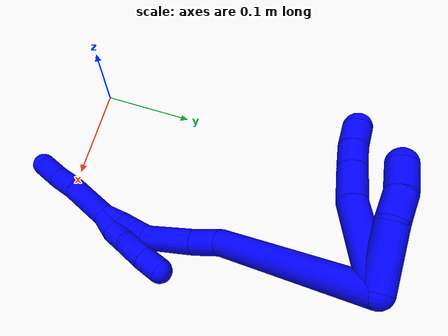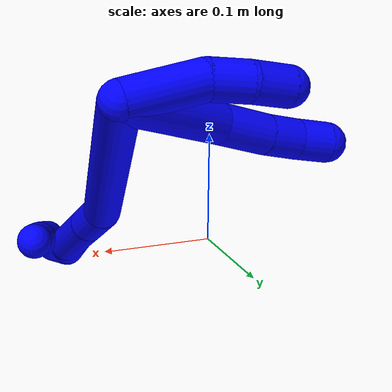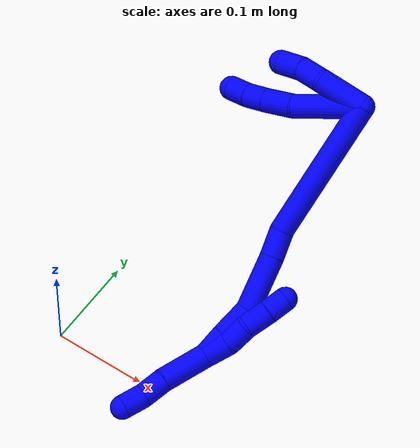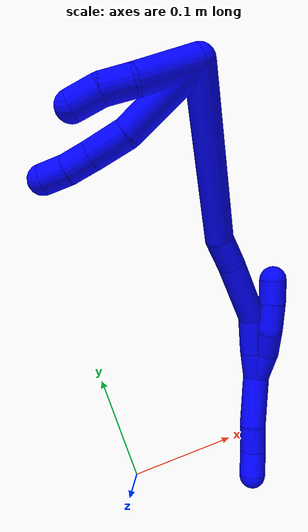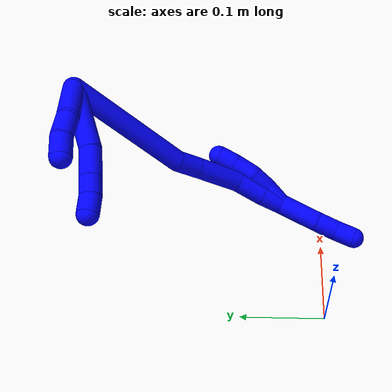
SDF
<sdf version="1.7">
 <world name="default">
  <model name="photoneo_s_sensor">
   <static>1</static>
   <pose>0 0 2 1.57079 1.57079 3.14159</pose>
   <link name="link">
    <inertial><mass>0.1</mass></inertial>
    <sensor name="sensor" type="depth">
     <update_rate>30</update_rate>
     <camera>
      <horizontal_fov>1.22</horizontal_fov>
      <image><width>1920</width><height>1200</height><format>B8G8R8</format></image>
      <clip><near>0.1</near><far>4</far></clip>
      <depth_camera><output>points</output></depth_camera>
     </camera>
     <plugin name="camera_plugin" filename="libgazebo_ros_depth_camera.so">
      <baseline>0.2</baseline>
      <alwaysOn>1</alwaysOn>
      <updateRate>0.0</updateRate>
      <cameraName>camera_ir</cameraName>
      <imageTopicName>/camera/color/image_raw</imageTopicName>
      <cameraInfoTopicName>/camera/color/camera_info</cameraInfoTopicName>
      <depthImageTopicName>/camera/depth/image_raw</depthImageTopicName>
      <depthImageCameraInfoTopicName>/camera/depth/camera_info</depthImageCameraInfoTopicName>
      <pointCloudTopicName>/camera/depth/points</pointCloudTopicName>
      <frameName>fr_optical</frameName>
      <pointCloudCutoff>0.1</pointCloudCutoff>
      <pointCloudCutoffMax>2.0</pointCloudCutoffMax>
      <distortionK1>0</distortionK1>
      <distortionK2>0</distortionK2>
      <distortionK3>0</distortionK3>
      <distortionT1>0</distortionT1>
      <distortionT2>0</distortionT2>
      <CxPrime>0</CxPrime>
      <Cx>0</Cx>
      <Cy>0</Cy>
      <focalLength>0</focalLength>
      <hackBaseline>0</hackBaseline>
     </plugin>
    </sensor>
   </link>
  </model>
  <model name="bin">
   <static>1</static>
   <link name="bottom">
    <collision name="collision-bottom">
     <pose>0 0 -0.01 0 -0 0</pose>
     <geometry><box><size>0.8 0.6 0.02</size></box></geometry>
     <surface>
      <friction><ode><mu>100</mu><mu2>100</mu2></ode></friction>
      <contact><collide_bitmask>65535</collide_bitmask></contact>
     </surface>
    </collision>
   </link>
   <link name="west_wall">
    <collision name="collision-west_wall">
     <pose>-0.41 0 0.1 0 -0 0</pose>
     <geometry><box><size>0.02 0.6 0.2</size></box></geometry>
     <surface>
      <friction><ode><mu>100</mu><mu2>100</mu2></ode></friction>
      <contact><collide_bitmask>65535</collide_bitmask></contact>
     </surface>
    </collision>
   </link>
   <link name="east_wall">
    <collision name="collision-east_wall">
     <pose>0.41 0 0.1 0 -0 0</pose>
     <geometry><box><size>0.02 0.6 0.2</size></box></geometry>
     <surface>
      <friction><ode><mu>100</mu><mu2>100</mu2></ode></friction>
      <contact><collide_bitmask>65535</collide_bitmask></contact>
     </surface>
    </collision>
   </link>
   <link name="south_wall">
    <collision name="collision-south_wall">
     <pose>0 -0.31 0.1 0 -0 0</pose>
     <geometry><box><size>0.8 0.02 0.2</size></box></geometry>
     <surface>
      <friction><ode><mu>100</mu><mu2>100</mu2></ode></friction>
      <contact><collide_bitmask>65535</collide_bitmask></contact>
     </surface>
    </collision>
   </link>
   <link name="north_wall">
    <collision name="collision-north_wall">
     <pose>0 0.31 0.1 0 -0 0</pose>
     <geometry><box><size>0.8 0.02 0.2</size></box></geometry>
     <surface>
      <friction><ode><mu>100</mu><mu2>100</mu2></ode></friction>
      <contact><collide_bitmask>65535</collide_bitmask></contact>
     </surface>
    </collision>
   </link>
  </model>
  <model name="1">
   <static>0</static>
   <link name="1">
    <collision name="collision-cylinder-e_1_2_8">
     <pose>-0.026594 0.011025 -0.02338 -2.70097 -0.799602 2.1669</pose>
     <geometry><cylinder><radius>0.0125</radius><length>0.074173</length></cylinder></geometry>
     <surface>
      <friction><ode><mu>1.16</mu><mu2>1.16</mu2><slip1>0</slip1><slip2>0</slip2></ode></friction>
      <contact><ode><kp>1e+06</kp><kd>1</kd><max_vel>0</max_vel><min_depth>0.001</min_depth></ode></contact>
     </surface>
    </collision>
    <visual name="visual-cylinder-e_1_2_8">
     <pose>-0.026594 0.011025 -0.02338 -2.70097 -0.799602 2.1669</pose>
     <geometry><cylinder><radius>0.0125</radius><length>0.074173</length></cylinder></geometry>
     <material><ambient>0 0 1 1</ambient></material>
    </visual>
    <collision name="collision-cylinder-e_2_8_9">
     <pose>-0.065282 0.029867 -0.054619 -2.35887 -0.828939 1.63482</pose>
     <geometry><cylinder><radius>0.0125</radius><length>0.032811</length></cylinder></geometry>
     <surface>
      <friction><ode><mu>1.16</mu><mu2>1.16</mu2><slip1>0</slip1><slip2>0</slip2></ode></friction>
      <contact><ode><kp>1e+06</kp><kd>1</kd><max_vel>0</max_vel><min_depth>0.001</min_depth></ode></contact>
     </surface>
    </collision>
    <visual name="visual-cylinder-e_2_8_9">
     <pose>-0.065282 0.029867 -0.054619 -2.35887 -0.828939 1.63482</pose>
     <geometry><cylinder><radius>0.0125</radius><length>0.032811</length></cylinder></geometry>
     <material><ambient>0 0 1 1</ambient></material>
    </visual>
    <collision name="collision-cylinder-e_3_9_10">
     <pose>-0.086001 0.042603 -0.067283 -2.34445 -0.897646 1.70463</pose>
     <geometry><cylinder><radius>0.0125</radius><length>0.022062</length></cylinder></geometry>
     <surface>
      <friction><ode><mu>1.16</mu><mu2>1.16</mu2><slip1>0</slip1><slip2>0</slip2></ode></friction>
      <contact><ode><kp>1e+06</kp><kd>1</kd><max_vel>0</max_vel><min_depth>0.001</min_depth></ode></contact>
     </surface>
    </collision>
    <visual name="visual-cylinder-e_3_9_10">
     <pose>-0.086001 0.042603 -0.067283 -2.34445 -0.897646 1.70463</pose>
     <geometry><cylinder><radius>0.0125</radius><length>0.022062</length></cylinder></geometry>
     <material><ambient>0 0 1 1</ambient></material>
    </visual>
    <collision name="collision-cylinder-e_4_10_6">
     <pose>-0.103034 0.052831 -0.07539 -2.12717 -0.931534 1.47062</pose>
     <geometry><cylinder><radius>0.0125</radius><length>0.020955</length></cylinder></geometry>
     <surface>
      <friction><ode><mu>1.16</mu><mu2>1.16</mu2><slip1>0</slip1><slip2>0</slip2></ode></friction>
      <contact><ode><kp>1e+06</kp><kd>1</kd><max_vel>0</max_vel><min_depth>0.001</min_depth></ode></contact>
     </surface>
    </collision>
    <visual name="visual-cylinder-e_4_10_6">
     <pose>-0.103034 0.052831 -0.07539 -2.12717 -0.931534 1.47062</pose>
     <geometry><cylinder><radius>0.0125</radius><length>0.020955</length></cylinder></geometry>
     <material><ambient>0 0 1 1</ambient></material>
    </visual>
    <collision name="collision-cylinder-e_1_2_11">
     <pose>-0.024099 0.006442 -0.003288 -2.0427 -1.27925 1.76428</pose>
     <geometry><cylinder><radius>0.0125</radius><length>0.050323</length></cylinder></geometry>
     <surface>
      <friction><ode><mu>1.16</mu><mu2>1.16</mu2><slip1>0</slip1><slip2>0</slip2></ode></friction>
      <contact><ode><kp>1e+06</kp><kd>1</kd><max_vel>0</max_vel><min_depth>0.001</min_depth></ode></contact>
     </surface>
    </collision>
    <visual name="visual-cylinder-e_1_2_11">
     <pose>-0.024099 0.006442 -0.003288 -2.0427 -1.27925 1.76428</pose>
     <geometry><cylinder><radius>0.0125</radius><length>0.050323</length></cylinder></geometry>
     <material><ambient>0 0 1 1</ambient></material>
    </visual>
    <collision name="collision-cylinder-e_2_11_12">
     <pose>-0.05859 0.019459 -0.009007 -1.92495 -0.97722 1.30397</pose>
     <geometry><cylinder><radius>0.0125</radius><length>0.02507</length></cylinder></geometry>
     <surface>
      <friction><ode><mu>1.16</mu><mu2>1.16</mu2><slip1>0</slip1><slip2>0</slip2></ode></friction>
      <contact><ode><kp>1e+06</kp><kd>1</kd><max_vel>0</max_vel><min_depth>0.001</min_depth></ode></contact>
     </surface>
    </collision>
    <visual name="visual-cylinder-e_2_11_12">
     <pose>-0.05859 0.019459 -0.009007 -1.92495 -0.97722 1.30397</pose>
     <geometry><cylinder><radius>0.0125</radius><length>0.02507</length></cylinder></geometry>
     <material><ambient>0 0 1 1</ambient></material>
    </visual>
    <collision name="collision-cylinder-e_3_12_5">
     <pose>-0.078939 0.031364 -0.016318 -2.31223 -0.943094 1.71727</pose>
     <geometry><cylinder><radius>0.0125</radius><length>0.024608</length></cylinder></geometry>
     <surface>
      <friction><ode><mu>1.16</mu><mu2>1.16</mu2><slip1>0</slip1><slip2>0</slip2></ode></friction>
      <contact><ode><kp>1e+06</kp><kd>1</kd><max_vel>0</max_vel><min_depth>0.001</min_depth></ode></contact>
     </surface>
    </collision>
    <visual name="visual-cylinder-e_3_12_5">
     <pose>-0.078939 0.031364 -0.016318 -2.31223 -0.943094 1.71727</pose>
     <geometry><cylinder><radius>0.0125</radius><length>0.024608</length></cylinder></geometry>
     <material><ambient>0 0 1 1</ambient></material>
    </visual>
    <collision name="collision-cylinder-e_1_2_13">
     <pose>0.00498 -0.006311 -0.074743 3.05736 0.06629 1.33332</pose>
     <geometry><cylinder><radius>0.0125</radius><length>0.150348</length></cylinder></geometry>
     <surface>
      <friction><ode><mu>1.16</mu><mu2>1.16</mu2><slip1>0</slip1><slip2>0</slip2></ode></friction>
      <contact><ode><kp>1e+06</kp><kd>1</kd><max_vel>0</max_vel><min_depth>0.001</min_depth></ode></contact>
     </surface>
    </collision>
    <visual name="visual-cylinder-e_1_2_13">
     <pose>0.00498 -0.006311 -0.074743 3.05736 0.06629 1.33332</pose>
     <geometry><cylinder><radius>0.0125</radius><length>0.150348</length></cylinder></geometry>
     <material><ambient>0 0 1 1</ambient></material>
    </visual>
    <collision name="collision-cylinder-e_2_13_14">
     <pose>0.01373 -0.016651 -0.162655 2.8446 0.267284 1.4642</pose>
     <geometry><cylinder><radius>0.0125</radius><length>0.028557</length></cylinder></geometry>
     <surface>
      <friction><ode><mu>1.16</mu><mu2>1.16</mu2><slip1>0</slip1><slip2>0</slip2></ode></friction>
      <contact><ode><kp>1e+06</kp><kd>1</kd><max_vel>0</max_vel><min_depth>0.001</min_depth></ode></contact>
     </surface>
    </collision>
    <visual name="visual-cylinder-e_2_13_14">
     <pose>0.01373 -0.016651 -0.162655 2.8446 0.267284 1.4642</pose>
     <geometry><cylinder><radius>0.0125</radius><length>0.028557</length></cylinder></geometry>
     <material><ambient>0 0 1 1</ambient></material>
    </visual>
    <collision name="collision-cylinder-e_3_14_15">
     <pose>0.023221 -0.029502 -0.203232 2.83024 0.196079 1.1196</pose>
     <geometry><cylinder><radius>0.0125</radius><length>0.05871</length></cylinder></geometry>
     <surface>
      <friction><ode><mu>1.16</mu><mu2>1.16</mu2><slip1>0</slip1><slip2>0</slip2></ode></friction>
      <contact><ode><kp>1e+06</kp><kd>1</kd><max_vel>0</max_vel><min_depth>0.001</min_depth></ode></contact>
     </surface>
    </collision>
    <visual name="visual-cylinder-e_3_14_15">
     <pose>0.023221 -0.029502 -0.203232 2.83024 0.196079 1.1196</pose>
     <geometry><cylinder><radius>0.0125</radius><length>0.05871</length></cylinder></geometry>
     <material><ambient>0 0 1 1</ambient></material>
    </visual>
    <collision name="collision-cylinder-e_4_15_16">
     <pose>0.026503 -0.042917 -0.247404 2.87413 -0.139319 -0.956853</pose>
     <geometry><cylinder><radius>0.0125</radius><length>0.035104</length></cylinder></geometry>
     <surface>
      <friction><ode><mu>1.16</mu><mu2>1.16</mu2><slip1>0</slip1><slip2>0</slip2></ode></friction>
      <contact><ode><kp>1e+06</kp><kd>1</kd><max_vel>0</max_vel><min_depth>0.001</min_depth></ode></contact>
     </surface>
    </collision>
    <visual name="visual-cylinder-e_4_15_16">
     <pose>0.026503 -0.042917 -0.247404 2.87413 -0.139319 -0.956853</pose>
     <geometry><cylinder><radius>0.0125</radius><length>0.035104</length></cylinder></geometry>
     <material><ambient>0 0 1 1</ambient></material>
    </visual>
    <collision name="collision-cylinder-e_5_16_1">
     <pose>0.02262 -0.051956 -0.276982 2.80767 -0.106131 -0.610627</pose>
     <geometry><cylinder><radius>0.0125</radius><length>0.027281</length></cylinder></geometry>
     <surface>
      <friction><ode><mu>1.16</mu><mu2>1.16</mu2><slip1>0</slip1><slip2>0</slip2></ode></friction>
      <contact><ode><kp>1e+06</kp><kd>1</kd><max_vel>0</max_vel><min_depth>0.001</min_depth></ode></contact>
     </surface>
    </collision>
    <visual name="visual-cylinder-e_5_16_1">
     <pose>0.02262 -0.051956 -0.276982 2.80767 -0.106131 -0.610627</pose>
     <geometry><cylinder><radius>0.0125</radius><length>0.027281</length></cylinder></geometry>
     <material><ambient>0 0 1 1</ambient></material>
    </visual>
    <collision name="collision-cylinder-e_1_1_17">
     <pose>0.026589 -0.056471 -0.277171 0.005488 0.40506 0.001127</pose>
     <geometry><cylinder><radius>0.0125</radius><length>0.027474</length></cylinder></geometry>
     <surface>
      <friction><ode><mu>1.16</mu><mu2>1.16</mu2><slip1>0</slip1><slip2>0</slip2></ode></friction>
      <contact><ode><kp>1e+06</kp><kd>1</kd><max_vel>0</max_vel><min_depth>0.001</min_depth></ode></contact>
     </surface>
    </collision>
    <visual name="visual-cylinder-e_1_1_17">
     <pose>0.026589 -0.056471 -0.277171 0.005488 0.40506 0.001127</pose>
     <geometry><cylinder><radius>0.0125</radius><length>0.027474</length></cylinder></geometry>
     <material><ambient>0 0 1 1</ambient></material>
    </visual>
    <collision name="collision-cylinder-e_2_17_18">
     <pose>0.033947 -0.055952 -0.252501 -0.048744 0.159941 -0.003907</pose>
     <geometry><cylinder><radius>0.0125</radius><length>0.02443</length></cylinder></geometry>
     <surface>
      <friction><ode><mu>1.16</mu><mu2>1.16</mu2><slip1>0</slip1><slip2>0</slip2></ode></friction>
      <contact><ode><kp>1e+06</kp><kd>1</kd><max_vel>0</max_vel><min_depth>0.001</min_depth></ode></contact>
     </surface>
    </collision>
    <visual name="visual-cylinder-e_2_17_18">
     <pose>0.033947 -0.055952 -0.252501 -0.048744 0.159941 -0.003907</pose>
     <geometry><cylinder><radius>0.0125</radius><length>0.02443</length></cylinder></geometry>
     <material><ambient>0 0 1 1</ambient></material>
    </visual>
    <collision name="collision-cylinder-e_3_18_19">
     <pose>0.04044 -0.05183 -0.228742 -0.293061 0.355845 -0.053067</pose>
     <geometry><cylinder><radius>0.0125</radius><length>0.026108</length></cylinder></geometry>
     <surface>
      <friction><ode><mu>1.16</mu><mu2>1.16</mu2><slip1>0</slip1><slip2>0</slip2></ode></friction>
      <contact><ode><kp>1e+06</kp><kd>1</kd><max_vel>0</max_vel><min_depth>0.001</min_depth></ode></contact>
     </surface>
    </collision>
    <visual name="visual-cylinder-e_3_18_19">
     <pose>0.04044 -0.05183 -0.228742 -0.293061 0.355845 -0.053067</pose>
     <geometry><cylinder><radius>0.0125</radius><length>0.026108</length></cylinder></geometry>
     <material><ambient>0 0 1 1</ambient></material>
    </visual>
    <collision name="collision-cylinder-e_4_19_4">
     <pose>0.048437 -0.044507 -0.2073 -0.371395 0.319069 -0.060436</pose>
     <geometry><cylinder><radius>0.0125</radius><length>0.021988</length></cylinder></geometry>
     <surface>
      <friction><ode><mu>1.16</mu><mu2>1.16</mu2><slip1>0</slip1><slip2>0</slip2></ode></friction>
      <contact><ode><kp>1e+06</kp><kd>1</kd><max_vel>0</max_vel><min_depth>0.001</min_depth></ode></contact>
     </surface>
    </collision>
    <visual name="visual-cylinder-e_4_19_4">
     <pose>0.048437 -0.044507 -0.2073 -0.371395 0.319069 -0.060436</pose>
     <geometry><cylinder><radius>0.0125</radius><length>0.021988</length></cylinder></geometry>
     <material><ambient>0 0 1 1</ambient></material>
    </visual>
    <collision name="collision-cylinder-e_1_1_20">
     <pose>0.010615 -0.066167 -0.310127 2.69378 -0.437875 -1.54761</pose>
     <geometry><cylinder><radius>0.0125</radius><length>0.049809</length></cylinder></geometry>
     <surface>
      <friction><ode><mu>1.16</mu><mu2>1.16</mu2><slip1>0</slip1><slip2>0</slip2></ode></friction>
      <contact><ode><kp>1e+06</kp><kd>1</kd><max_vel>0</max_vel><min_depth>0.001</min_depth></ode></contact>
     </surface>
    </collision>
    <visual name="visual-cylinder-e_1_1_20">
     <pose>0.010615 -0.066167 -0.310127 2.69378 -0.437875 -1.54761</pose>
     <geometry><cylinder><radius>0.0125</radius><length>0.049809</length></cylinder></geometry>
     <material><ambient>0 0 1 1</ambient></material>
    </visual>
    <collision name="collision-cylinder-e_2_20_21">
     <pose>-0.003809 -0.080878 -0.341831 2.73151 -0.302051 -1.26349</pose>
     <geometry><cylinder><radius>0.0125</radius><length>0.025979</length></cylinder></geometry>
     <surface>
      <friction><ode><mu>1.16</mu><mu2>1.16</mu2><slip1>0</slip1><slip2>0</slip2></ode></friction>
      <contact><ode><kp>1e+06</kp><kd>1</kd><max_vel>0</max_vel><min_depth>0.001</min_depth></ode></contact>
     </surface>
    </collision>
    <visual name="visual-cylinder-e_2_20_21">
     <pose>-0.003809 -0.080878 -0.341831 2.73151 -0.302051 -1.26349</pose>
     <geometry><cylinder><radius>0.0125</radius><length>0.025979</length></cylinder></geometry>
     <material><ambient>0 0 1 1</ambient></material>
    </visual>
    <collision name="collision-cylinder-e_3_21_3">
     <pose>-0.013061 -0.091433 -0.36248 2.59751 -0.461305 -1.39945</pose>
     <geometry><cylinder><radius>0.0125</radius><length>0.024212</length></cylinder></geometry>
     <surface>
      <friction><ode><mu>1.16</mu><mu2>1.16</mu2><slip1>0</slip1><slip2>0</slip2></ode></friction>
      <contact><ode><kp>1e+06</kp><kd>1</kd><max_vel>0</max_vel><min_depth>0.001</min_depth></ode></contact>
     </surface>
    </collision>
    <visual name="visual-cylinder-e_3_21_3">
     <pose>-0.013061 -0.091433 -0.36248 2.59751 -0.461305 -1.39945</pose>
     <geometry><cylinder><radius>0.0125</radius><length>0.024212</length></cylinder></geometry>
     <material><ambient>0 0 1 1</ambient></material>
    </visual>
    <collision name="collision-sphere-3">
     <pose>-0.01845 -0.097045 -0.371755 0 -0 0</pose>
     <geometry><sphere><radius>0.0125</radius></sphere></geometry>
     <surface>
      <friction><ode><mu>1.16</mu><mu2>1.16</mu2><slip1>0</slip1><slip2>0</slip2></ode></friction>
      <contact><ode><kp>1e+06</kp><kd>1</kd><max_vel>0</max_vel><min_depth>0.001</min_depth></ode></contact>
     </surface>
    </collision>
    <visual name="visual-sphere-3">
     <pose>-0.01845 -0.097045 -0.371755 0 -0 0</pose>
     <geometry><sphere><radius>0.0125</radius></sphere></geometry>
     <material><ambient>0 0 1 1</ambient></material>
    </visual>
    <collision name="collision-sphere-21">
     <pose>-0.007673 -0.085822 -0.353205 0 -0 0</pose>
     <geometry><sphere><radius>0.0125</radius></sphere></geometry>
     <surface>
      <friction><ode><mu>1.16</mu><mu2>1.16</mu2><slip1>0</slip1><slip2>0</slip2></ode></friction>
      <contact><ode><kp>1e+06</kp><kd>1</kd><max_vel>0</max_vel><min_depth>0.001</min_depth></ode></contact>
     </surface>
    </collision>
    <visual name="visual-sphere-21">
     <pose>-0.007673 -0.085822 -0.353205 0 -0 0</pose>
     <geometry><sphere><radius>0.0125</radius></sphere></geometry>
     <material><ambient>0 0 1 1</ambient></material>
    </visual>
    <collision name="collision-sphere-20">
     <pose>5.5e-05 -0.075934 -0.330458 0 -0 0</pose>
     <geometry><sphere><radius>0.0125</radius></sphere></geometry>
     <surface>
      <friction><ode><mu>1.16</mu><mu2>1.16</mu2><slip1>0</slip1><slip2>0</slip2></ode></friction>
      <contact><ode><kp>1e+06</kp><kd>1</kd><max_vel>0</max_vel><min_depth>0.001</min_depth></ode></contact>
     </surface>
    </collision>
    <visual name="visual-sphere-20">
     <pose>5.5e-05 -0.075934 -0.330458 0 -0 0</pose>
     <geometry><sphere><radius>0.0125</radius></sphere></geometry>
     <material><ambient>0 0 1 1</ambient></material>
    </visual>
    <collision name="collision-sphere-4">
     <pose>0.051885 -0.040718 -0.197572 0 -0 0</pose>
     <geometry><sphere><radius>0.0125</radius></sphere></geometry>
     <surface>
      <friction><ode><mu>1.16</mu><mu2>1.16</mu2><slip1>0</slip1><slip2>0</slip2></ode></friction>
      <contact><ode><kp>1e+06</kp><kd>1</kd><max_vel>0</max_vel><min_depth>0.001</min_depth></ode></contact>
     </surface>
    </collision>
    <visual name="visual-sphere-4">
     <pose>0.051885 -0.040718 -0.197572 0 -0 0</pose>
     <geometry><sphere><radius>0.0125</radius></sphere></geometry>
     <material><ambient>0 0 1 1</ambient></material>
    </visual>
    <collision name="collision-sphere-11">
     <pose>-0.048199 0.012883 -0.006575 0 -0 0</pose>
     <geometry><sphere><radius>0.0125</radius></sphere></geometry>
     <surface>
      <friction><ode><mu>1.16</mu><mu2>1.16</mu2><slip1>0</slip1><slip2>0</slip2></ode></friction>
      <contact><ode><kp>1e+06</kp><kd>1</kd><max_vel>0</max_vel><min_depth>0.001</min_depth></ode></contact>
     </surface>
    </collision>
    <visual name="visual-sphere-11">
     <pose>-0.048199 0.012883 -0.006575 0 -0 0</pose>
     <geometry><sphere><radius>0.0125</radius></sphere></geometry>
     <material><ambient>0 0 1 1</ambient></material>
    </visual>
    <collision name="collision-sphere-6">
     <pose>-0.111442 0.058139 -0.078691 0 -0 0</pose>
     <geometry><sphere><radius>0.0125</radius></sphere></geometry>
     <surface>
      <friction><ode><mu>1.16</mu><mu2>1.16</mu2><slip1>0</slip1><slip2>0</slip2></ode></friction>
      <contact><ode><kp>1e+06</kp><kd>1</kd><max_vel>0</max_vel><min_depth>0.001</min_depth></ode></contact>
     </surface>
    </collision>
    <visual name="visual-sphere-6">
     <pose>-0.111442 0.058139 -0.078691 0 -0 0</pose>
     <geometry><sphere><radius>0.0125</radius></sphere></geometry>
     <material><ambient>0 0 1 1</ambient></material>
    </visual>
    <collision name="collision-sphere-10">
     <pose>-0.094626 0.047523 -0.072089 0 -0 0</pose>
     <geometry><sphere><radius>0.0125</radius></sphere></geometry>
     <surface>
      <friction><ode><mu>1.16</mu><mu2>1.16</mu2><slip1>0</slip1><slip2>0</slip2></ode></friction>
      <contact><ode><kp>1e+06</kp><kd>1</kd><max_vel>0</max_vel><min_depth>0.001</min_depth></ode></contact>
     </surface>
    </collision>
    <visual name="visual-sphere-10">
     <pose>-0.094626 0.047523 -0.072089 0 -0 0</pose>
     <geometry><sphere><radius>0.0125</radius></sphere></geometry>
     <material><ambient>0 0 1 1</ambient></material>
    </visual>
    <collision name="collision-sphere-9">
     <pose>-0.077377 0.037683 -0.062478 0 -0 0</pose>
     <geometry><sphere><radius>0.0125</radius></sphere></geometry>
     <surface>
      <friction><ode><mu>1.16</mu><mu2>1.16</mu2><slip1>0</slip1><slip2>0</slip2></ode></friction>
      <contact><ode><kp>1e+06</kp><kd>1</kd><max_vel>0</max_vel><min_depth>0.001</min_depth></ode></contact>
     </surface>
    </collision>
    <visual name="visual-sphere-9">
     <pose>-0.077377 0.037683 -0.062478 0 -0 0</pose>
     <geometry><sphere><radius>0.0125</radius></sphere></geometry>
     <material><ambient>0 0 1 1</ambient></material>
    </visual>
    <collision name="collision-sphere-2">
     <geometry><sphere><radius>0.0125</radius></sphere></geometry>
     <surface>
      <friction><ode><mu>1.16</mu><mu2>1.16</mu2><slip1>0</slip1><slip2>0</slip2></ode></friction>
      <contact><ode><kp>1e+06</kp><kd>1</kd><max_vel>0</max_vel><min_depth>0.001</min_depth></ode></contact>
     </surface>
    </collision>
    <visual name="visual-sphere-2">
     <geometry><sphere><radius>0.0125</radius></sphere></geometry>
     <material><ambient>0 0 1 1</ambient></material>
    </visual>
    <collision name="collision-sphere-19">
     <pose>0.044988 -0.048295 -0.217027 0 -0 0</pose>
     <geometry><sphere><radius>0.0125</radius></sphere></geometry>
     <surface>
      <friction><ode><mu>1.16</mu><mu2>1.16</mu2><slip1>0</slip1><slip2>0</slip2></ode></friction>
      <contact><ode><kp>1e+06</kp><kd>1</kd><max_vel>0</max_vel><min_depth>0.001</min_depth></ode></contact>
     </surface>
    </collision>
    <visual name="visual-sphere-19">
     <pose>0.044988 -0.048295 -0.217027 0 -0 0</pose>
     <geometry><sphere><radius>0.0125</radius></sphere></geometry>
     <material><ambient>0 0 1 1</ambient></material>
    </visual>
    <collision name="collision-sphere-8">
     <pose>-0.053188 0.02205 -0.04676 0 -0 0</pose>
     <geometry><sphere><radius>0.0125</radius></sphere></geometry>
     <surface>
      <friction><ode><mu>1.16</mu><mu2>1.16</mu2><slip1>0</slip1><slip2>0</slip2></ode></friction>
      <contact><ode><kp>1e+06</kp><kd>1</kd><max_vel>0</max_vel><min_depth>0.001</min_depth></ode></contact>
     </surface>
    </collision>
    <visual name="visual-sphere-8">
     <pose>-0.053188 0.02205 -0.04676 0 -0 0</pose>
     <geometry><sphere><radius>0.0125</radius></sphere></geometry>
     <material><ambient>0 0 1 1</ambient></material>
    </visual>
    <collision name="collision-sphere-12">
     <pose>-0.06898 0.026035 -0.011438 0 -0 0</pose>
     <geometry><sphere><radius>0.0125</radius></sphere></geometry>
     <surface>
      <friction><ode><mu>1.16</mu><mu2>1.16</mu2><slip1>0</slip1><slip2>0</slip2></ode></friction>
      <contact><ode><kp>1e+06</kp><kd>1</kd><max_vel>0</max_vel><min_depth>0.001</min_depth></ode></contact>
     </surface>
    </collision>
    <visual name="visual-sphere-12">
     <pose>-0.06898 0.026035 -0.011438 0 -0 0</pose>
     <geometry><sphere><radius>0.0125</radius></sphere></geometry>
     <material><ambient>0 0 1 1</ambient></material>
    </visual>
    <collision name="collision-sphere-5">
     <pose>-0.088897 0.036694 -0.021198 0 -0 0</pose>
     <geometry><sphere><radius>0.0125</radius></sphere></geometry>
     <surface>
      <friction><ode><mu>1.16</mu><mu2>1.16</mu2><slip1>0</slip1><slip2>0</slip2></ode></friction>
      <contact><ode><kp>1e+06</kp><kd>1</kd><max_vel>0</max_vel><min_depth>0.001</min_depth></ode></contact>
     </surface>
    </collision>
    <visual name="visual-sphere-5">
     <pose>-0.088897 0.036694 -0.021198 0 -0 0</pose>
     <geometry><sphere><radius>0.0125</radius></sphere></geometry>
     <material><ambient>0 0 1 1</ambient></material>
    </visual>
    <collision name="collision-sphere-13">
     <pose>0.009959 -0.012621 -0.149486 0 -0 0</pose>
     <geometry><sphere><radius>0.0125</radius></sphere></geometry>
     <surface>
      <friction><ode><mu>1.16</mu><mu2>1.16</mu2><slip1>0</slip1><slip2>0</slip2></ode></friction>
      <contact><ode><kp>1e+06</kp><kd>1</kd><max_vel>0</max_vel><min_depth>0.001</min_depth></ode></contact>
     </surface>
    </collision>
    <visual name="visual-sphere-13">
     <pose>0.009959 -0.012621 -0.149486 0 -0 0</pose>
     <geometry><sphere><radius>0.0125</radius></sphere></geometry>
     <material><ambient>0 0 1 1</ambient></material>
    </visual>
    <collision name="collision-sphere-14">
     <pose>0.017502 -0.020682 -0.175824 0 -0 0</pose>
     <geometry><sphere><radius>0.0125</radius></sphere></geometry>
     <surface>
      <friction><ode><mu>1.16</mu><mu2>1.16</mu2><slip1>0</slip1><slip2>0</slip2></ode></friction>
      <contact><ode><kp>1e+06</kp><kd>1</kd><max_vel>0</max_vel><min_depth>0.001</min_depth></ode></contact>
     </surface>
    </collision>
    <visual name="visual-sphere-14">
     <pose>0.017502 -0.020682 -0.175824 0 -0 0</pose>
     <geometry><sphere><radius>0.0125</radius></sphere></geometry>
     <material><ambient>0 0 1 1</ambient></material>
    </visual>
    <collision name="collision-sphere-15">
     <pose>0.02894 -0.038323 -0.23064 0 -0 0</pose>
     <geometry><sphere><radius>0.0125</radius></sphere></geometry>
     <surface>
      <friction><ode><mu>1.16</mu><mu2>1.16</mu2><slip1>0</slip1><slip2>0</slip2></ode></friction>
      <contact><ode><kp>1e+06</kp><kd>1</kd><max_vel>0</max_vel><min_depth>0.001</min_depth></ode></contact>
     </surface>
    </collision>
    <visual name="visual-sphere-15">
     <pose>0.02894 -0.038323 -0.23064 0 -0 0</pose>
     <geometry><sphere><radius>0.0125</radius></sphere></geometry>
     <material><ambient>0 0 1 1</ambient></material>
    </visual>
    <collision name="collision-sphere-16">
     <pose>0.024065 -0.04751 -0.264168 0 -0 0</pose>
     <geometry><sphere><radius>0.0125</radius></sphere></geometry>
     <surface>
      <friction><ode><mu>1.16</mu><mu2>1.16</mu2><slip1>0</slip1><slip2>0</slip2></ode></friction>
      <contact><ode><kp>1e+06</kp><kd>1</kd><max_vel>0</max_vel><min_depth>0.001</min_depth></ode></contact>
     </surface>
    </collision>
    <visual name="visual-sphere-16">
     <pose>0.024065 -0.04751 -0.264168 0 -0 0</pose>
     <geometry><sphere><radius>0.0125</radius></sphere></geometry>
     <material><ambient>0 0 1 1</ambient></material>
    </visual>
    <collision name="collision-sphere-1">
     <pose>0.021175 -0.056401 -0.289796 0 -0 0</pose>
     <geometry><sphere><radius>0.0125</radius></sphere></geometry>
     <surface>
      <friction><ode><mu>1.16</mu><mu2>1.16</mu2><slip1>0</slip1><slip2>0</slip2></ode></friction>
      <contact><ode><kp>1e+06</kp><kd>1</kd><max_vel>0</max_vel><min_depth>0.001</min_depth></ode></contact>
     </surface>
    </collision>
    <visual name="visual-sphere-1">
     <pose>0.021175 -0.056401 -0.289796 0 -0 0</pose>
     <geometry><sphere><radius>0.0125</radius></sphere></geometry>
     <material><ambient>0 0 1 1</ambient></material>
    </visual>
    <collision name="collision-sphere-18">
     <pose>0.035893 -0.055365 -0.240456 0 -0 0</pose>
     <geometry><sphere><radius>0.0125</radius></sphere></geometry>
     <surface>
      <friction><ode><mu>1.16</mu><mu2>1.16</mu2><slip1>0</slip1><slip2>0</slip2></ode></friction>
      <contact><ode><kp>1e+06</kp><kd>1</kd><max_vel>0</max_vel><min_depth>0.001</min_depth></ode></contact>
     </surface>
    </collision>
    <visual name="visual-sphere-18">
     <pose>0.035893 -0.055365 -0.240456 0 -0 0</pose>
     <geometry><sphere><radius>0.0125</radius></sphere></geometry>
     <material><ambient>0 0 1 1</ambient></material>
    </visual>
    <collision name="collision-sphere-17">
     <pose>0.032002 -0.05654 -0.264546 0 -0 0</pose>
     <geometry><sphere><radius>0.0125</radius></sphere></geometry>
     <surface>
      <friction><ode><mu>1.16</mu><mu2>1.16</mu2><slip1>0</slip1><slip2>0</slip2></ode></friction>
      <contact><ode><kp>1e+06</kp><kd>1</kd><max_vel>0</max_vel><min_depth>0.001</min_depth></ode></contact>
     </surface>
    </collision>
    <visual name="visual-sphere-17">
     <pose>0.032002 -0.05654 -0.264546 0 -0 0</pose>
     <geometry><sphere><radius>0.0125</radius></sphere></geometry>
     <material><ambient>0 0 1 1</ambient></material>
    </visual>
    <inertial>
     <pose>-0.006599 -0.018017 -0.145141 0 -0 0</pose>
     <mass>0.75</mass>
     <inertia>
      <ixx>0.000373</ixx>
      <ixy>0</ixy>
      <ixz>0</ixz>
      <iyy>0.000293</iyy>
      <iyz>0</iyz>
      <izz>1.8e-05</izz>
     </inertia>
    </inertial>
   </link>
   <pose>0.171401 0.288261 0.200804 -0.713594 0.436603 0.13827</pose>
  </model>
 </world>
</sdf>
